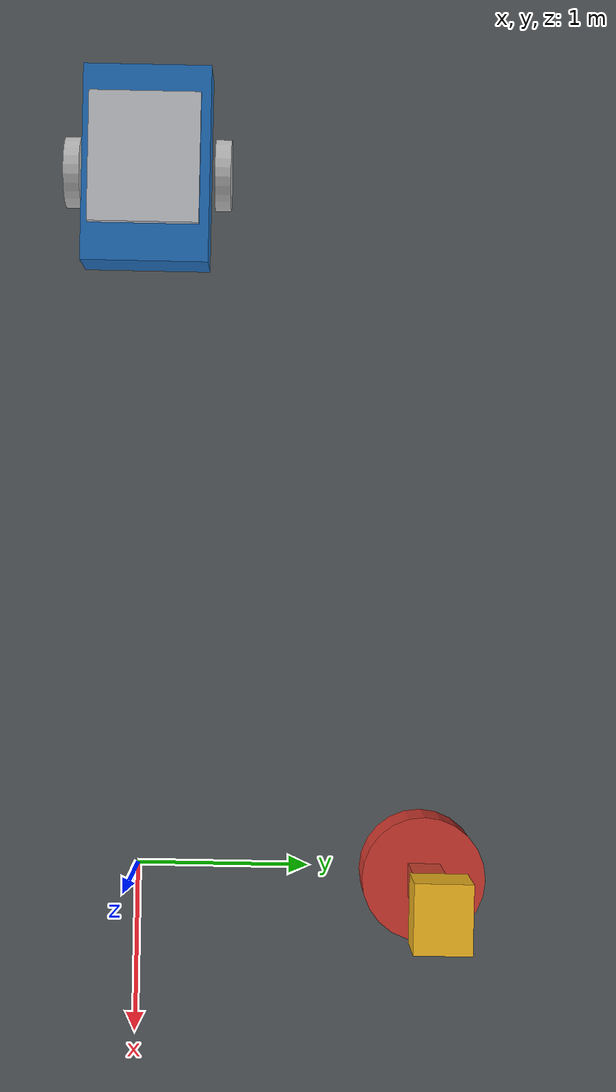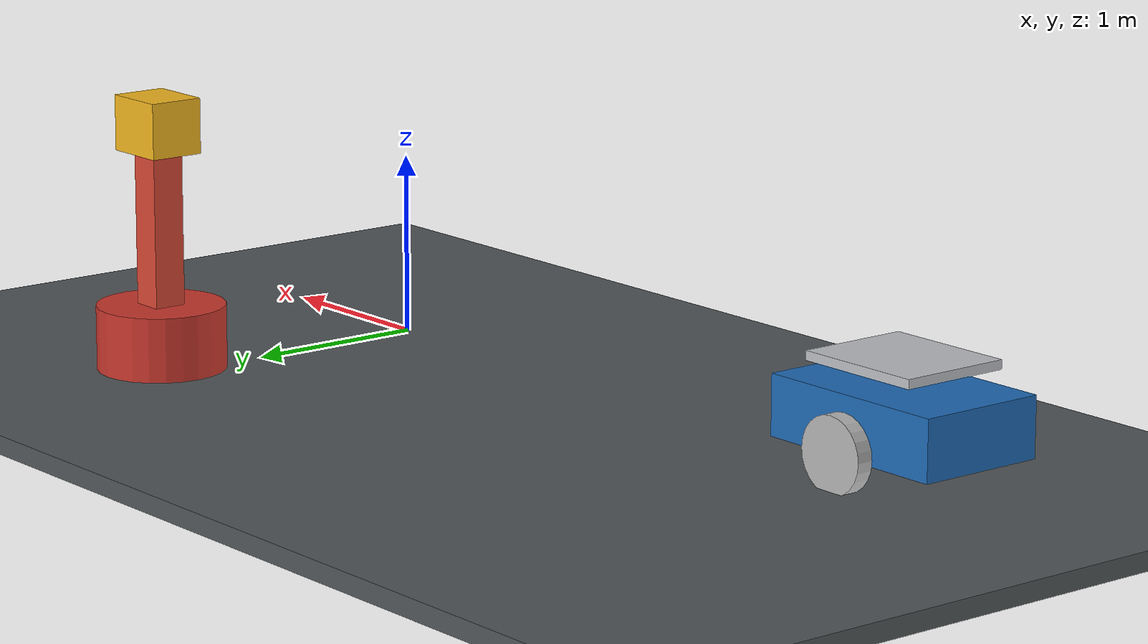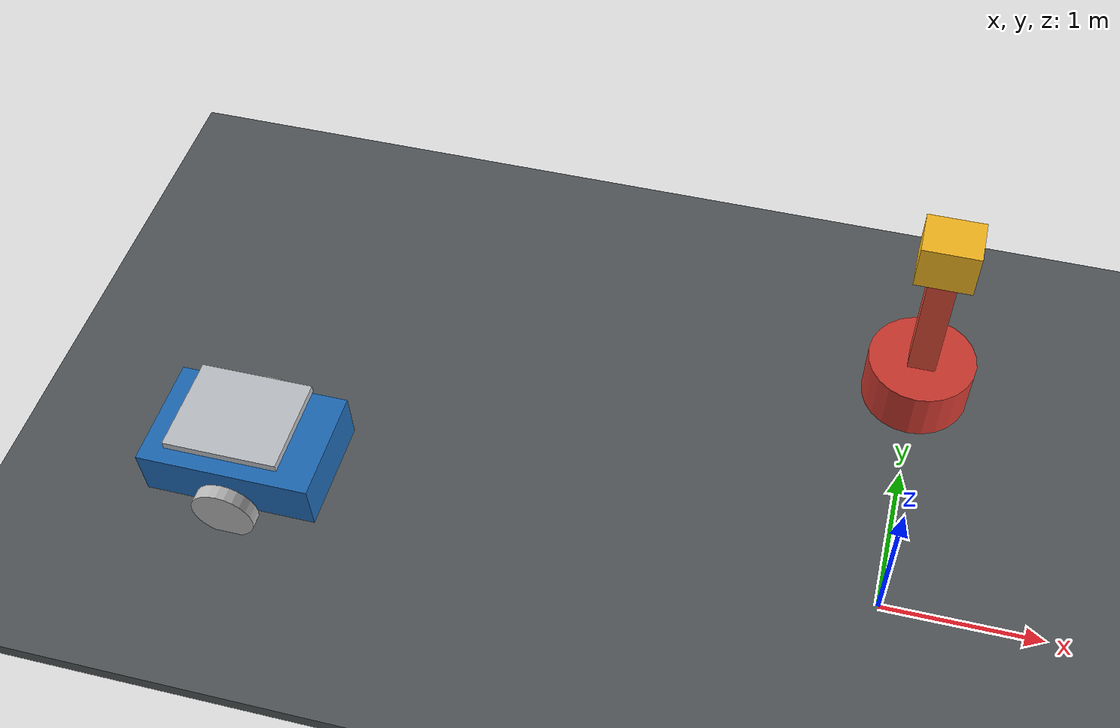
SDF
<?xml version="1.0"?>
<sdf version="1.10">
  <world name="s4">
    <physics name="deterministic" type="ignored">
      <max_step_size>0.001</max_step_size>
      <real_time_factor>1.0</real_time_factor>
    </physics>
    <gravity>0 0 -9.80665</gravity>
    <plugin filename="gz-sim-physics-system" name="gz::sim::systems::Physics"/>
    <plugin filename="gz-sim-user-commands-system" name="gz::sim::systems::UserCommands"/>
    <plugin filename="gz-sim-scene-broadcaster-system" name="gz::sim::systems::SceneBroadcaster"/>
    <plugin filename="ump_payload_handoff" name="ump::gazebo::PayloadHandoff">
      <payload_model>package</payload_model><payload_link>body</payload_link>
      <arm_model>robot_arm</arm_model><arm_link>tool0</arm_link>
      <mobile_model>mobile_base</mobile_model><mobile_link>base_link</mobile_link>
      <maximum_distance>0.65</maximum_distance>
      <initial_owner>arm</initial_owner>
      <state_topic>/ump/payload/state</state_topic>
    </plugin>
    <plugin filename="ump_zone_monitor" name="ump::gazebo::ZoneMonitor">
      <center_x>0</center_x><center_y>1</center_y>
      <half_extent_x>0.9</half_extent_x><half_extent_y>0.9</half_extent_y>
      <state_topic>/ump/zone/state</state_topic>
      <allowed_model>floor</allowed_model>
      <allowed_model>transfer_zone</allowed_model>
      <allowed_model>mobile_base</allowed_model>
      <allowed_model>robot_arm</allowed_model>
      <allowed_model>package</allowed_model>
    </plugin>

    <light name="overhead" type="directional">
      <pose>0 0 8 0 0 0</pose>
      <cast_shadows>true</cast_shadows>
      <diffuse>0.9 0.9 0.9 1</diffuse>
      <direction>-0.3 0.2 -1</direction>
    </light>

    <model name="floor">
      <static>true</static>
      <link name="floor_link">
        <collision name="collision"><geometry><box><size>14 8 0.1</size></box></geometry></collision>
        <visual name="visual">
          <geometry><box><size>14 8 0.1</size></box></geometry>
          <material><diffuse>0.32 0.34 0.35 1</diffuse></material>
        </visual>
      </link>
    </model>

    <model name="transfer_zone">
      <static>true</static>
      <pose>0 1 0.006 0 0 0</pose>
      <link name="zone">
        <visual name="visual">
          <geometry><box><size>1.8 1.8 0.01</size></box></geometry>
          <material><diffuse>0.1 0.65 0.38 0.65</diffuse></material>
        </visual>
      </link>
    </model>

    <include>
      <uri>model://ump_mobile_base</uri>
      <name>mobile_base</name>
      <pose>-4 0 0.35 0 0 0</pose>
    </include>

    <model name="robot_arm">
      <pose>0 1.65 0.05 0 0 -1.5708</pose>
      <link name="pedestal">
        <inertial><mass>80</mass><inertia><ixx>3</ixx><iyy>3</iyy><izz>2</izz></inertia></inertial>
        <collision name="collision"><geometry><cylinder><radius>0.35</radius><length>0.7</length></cylinder></geometry></collision>
        <visual name="visual"><geometry><cylinder><radius>0.35</radius><length>0.7</length></cylinder></geometry><material><diffuse>0.8 0.22 0.18 1</diffuse></material></visual>
      </link>
      <joint name="pedestal_fixed" type="fixed">
        <parent>world</parent><child>pedestal</child>
      </joint>
      <link name="upper_arm">
        <pose relative_to="pedestal">0 0 0.75 0 0 0</pose>
        <inertial><mass>5</mass><inertia><ixx>0.3</ixx><iyy>0.3</iyy><izz>0.08</izz></inertia></inertial>
        <collision name="collision"><geometry><box><size>0.18 0.18 0.9</size></box></geometry></collision>
        <visual name="visual"><geometry><box><size>0.18 0.18 0.9</size></box></geometry><material><diffuse>0.85 0.28 0.2 1</diffuse></material></visual>
      </link>
      <joint name="shoulder" type="revolute">
        <parent>pedestal</parent><child>upper_arm</child><pose>0 0 0.35 0 0 0</pose>
        <axis><xyz>0 1 0</xyz><limit><lower>-1.4</lower><upper>1.4</upper><effort>100</effort><velocity>1</velocity></limit></axis>
      </joint>
      <link name="tool0">
        <pose relative_to="upper_arm">0 0 0.58 0 0 0</pose>
        <inertial><mass>1</mass><inertia><ixx>0.02</ixx><iyy>0.02</iyy><izz>0.02</izz></inertia></inertial>
        <collision name="collision"><geometry><sphere><radius>0.14</radius></sphere></geometry></collision>
        <visual name="visual"><geometry><sphere><radius>0.14</radius></sphere></geometry><material><diffuse>0.14 0.14 0.15 1</diffuse></material></visual>
      </link>
      <joint name="elbow" type="revolute">
        <parent>upper_arm</parent><child>tool0</child><pose>0 0 0.45 0 0 0</pose>
        <axis><xyz>0 1 0</xyz><limit><lower>-1.8</lower><upper>1.8</upper><effort>80</effort><velocity>1</velocity></limit></axis>
      </joint>
      <plugin filename="gz-sim-joint-position-controller-system" name="gz::sim::systems::JointPositionController">
        <joint_name>shoulder</joint_name><topic>/model/robot_arm/shoulder</topic><p_gain>40</p_gain>
      </plugin>
      <plugin filename="gz-sim-joint-position-controller-system" name="gz::sim::systems::JointPositionController">
        <joint_name>elbow</joint_name><topic>/model/robot_arm/elbow</topic><p_gain>30</p_gain>
      </plugin>
    </model>

    <model name="package">
      <pose>0 1.65 1.38 0 0 0</pose>
      <link name="body">
        <inertial><mass>2</mass><inertia><ixx>0.025</ixx><iyy>0.025</iyy><izz>0.025</izz></inertia></inertial>
        <collision name="collision"><geometry><box><size>0.36 0.30 0.30</size></box></geometry></collision>
        <visual name="visual"><geometry><box><size>0.36 0.30 0.30</size></box></geometry><material><diffuse>0.96 0.72 0.12 1</diffuse></material></visual>
      </link>
    </model>
  </world>
</sdf>

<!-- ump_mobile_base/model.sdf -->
<sdf version="1.10">
  <model name="ump_mobile_base">
    <link name="base_link">
      <inertial><mass>28</mass><inertia><ixx>1.1</ixx><iyy>1.8</iyy><izz>2.1</izz></inertia></inertial>
      <collision name="body_collision"><geometry><box><size>1.1 0.72 0.32</size></box></geometry></collision>
      <visual name="body_visual"><geometry><box><size>1.1 0.72 0.32</size></box></geometry><material><diffuse>0.12 0.42 0.72 1</diffuse></material></visual>
      <collision name="tray_collision"><pose>0 0 0.28 0 0 0</pose><geometry><box><size>0.72 0.62 0.05</size></box></geometry></collision>
      <visual name="tray_visual"><pose>0 0 0.28 0 0 0</pose><geometry><box><size>0.72 0.62 0.05</size></box></geometry><material><diffuse>0.75 0.76 0.78 1</diffuse></material></visual>
      <collision name="front_caster"><pose>0.42 0 -0.27 0 0 0</pose><geometry><sphere><radius>0.08</radius></sphere></geometry><surface><friction><ode><mu>0.05</mu><mu2>0.05</mu2></ode></friction></surface></collision>
      <collision name="rear_caster"><pose>-0.42 0 -0.27 0 0 0</pose><geometry><sphere><radius>0.08</radius></sphere></geometry><surface><friction><ode><mu>0.05</mu><mu2>0.05</mu2></ode></friction></surface></collision>
    </link>
    <link name="left_wheel">
      <pose relative_to="base_link">0 0.43 -0.12 1.5708 0 0</pose>
      <inertial><mass>2</mass><inertia><ixx>0.03</ixx><iyy>0.03</iyy><izz>0.03</izz></inertia></inertial>
      <collision name="collision"><geometry><cylinder><radius>0.2</radius><length>0.09</length></cylinder></geometry></collision>
      <visual name="visual"><geometry><cylinder><radius>0.2</radius><length>0.09</length></cylinder></geometry></visual>
    </link>
    <link name="right_wheel">
      <pose relative_to="base_link">0 -0.43 -0.12 1.5708 0 0</pose>
      <inertial><mass>2</mass><inertia><ixx>0.03</ixx><iyy>0.03</iyy><izz>0.03</izz></inertia></inertial>
      <collision name="collision"><geometry><cylinder><radius>0.2</radius><length>0.09</length></cylinder></geometry></collision>
      <visual name="visual"><geometry><cylinder><radius>0.2</radius><length>0.09</length></cylinder></geometry></visual>
    </link>
    <joint name="left_wheel_joint" type="revolute"><parent>base_link</parent><child>left_wheel</child><axis><xyz>0 1 0</xyz></axis></joint>
    <joint name="right_wheel_joint" type="revolute"><parent>base_link</parent><child>right_wheel</child><axis><xyz>0 1 0</xyz></axis></joint>
    <plugin filename="gz-sim-diff-drive-system" name="gz::sim::systems::DiffDrive">
      <left_joint>left_wheel_joint</left_joint><right_joint>right_wheel_joint</right_joint>
      <wheel_separation>0.86</wheel_separation><wheel_radius>0.2</wheel_radius>
      <topic>/model/mobile_base/cmd_vel</topic><odom_topic>/model/mobile_base/odometry</odom_topic>
    </plugin>
  </model>
</sdf>
